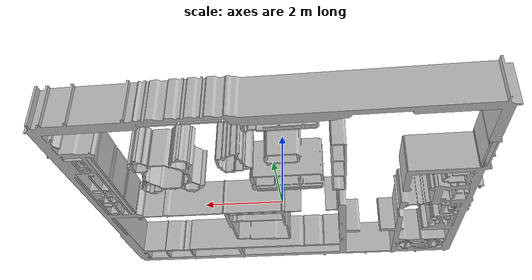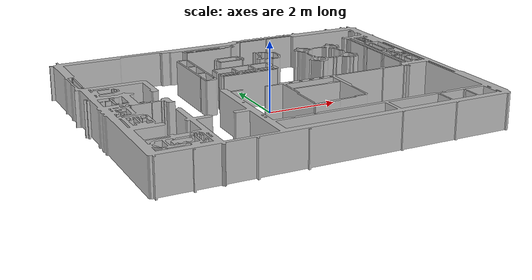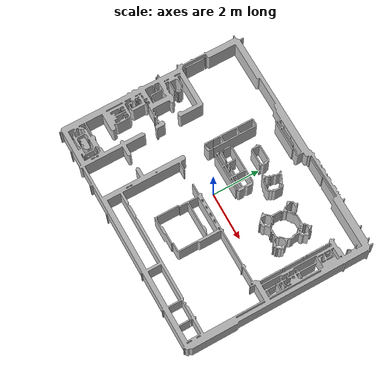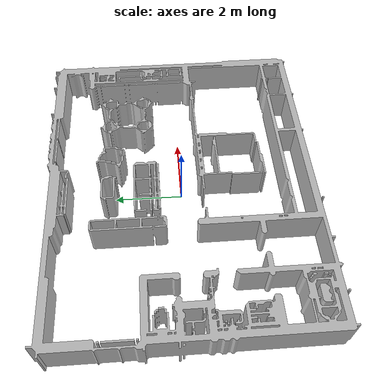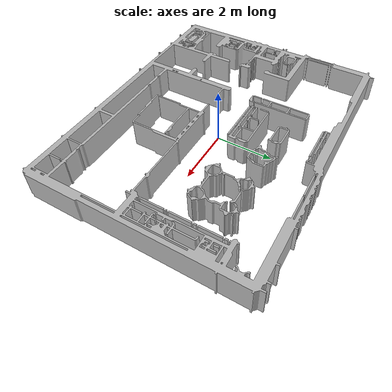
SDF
<?xml version="1.0" ?>
<sdf version="1.6">
  <model name="test_103">
    <link name="link">
      <collision name="collision">
        <pose>-6.0 4.95 0 0 0 0</pose>
        <geometry><mesh><uri>model://test_103/map.stl</uri></mesh></geometry>
      </collision>
      <visual name="visual">
        <pose>-6.0 4.95 0 0 0 0</pose>
        <geometry><mesh><uri>model://test_103/map.stl</uri></mesh></geometry>
      </visual>
    </link>
    <static>true</static>
  </model>
</sdf>
